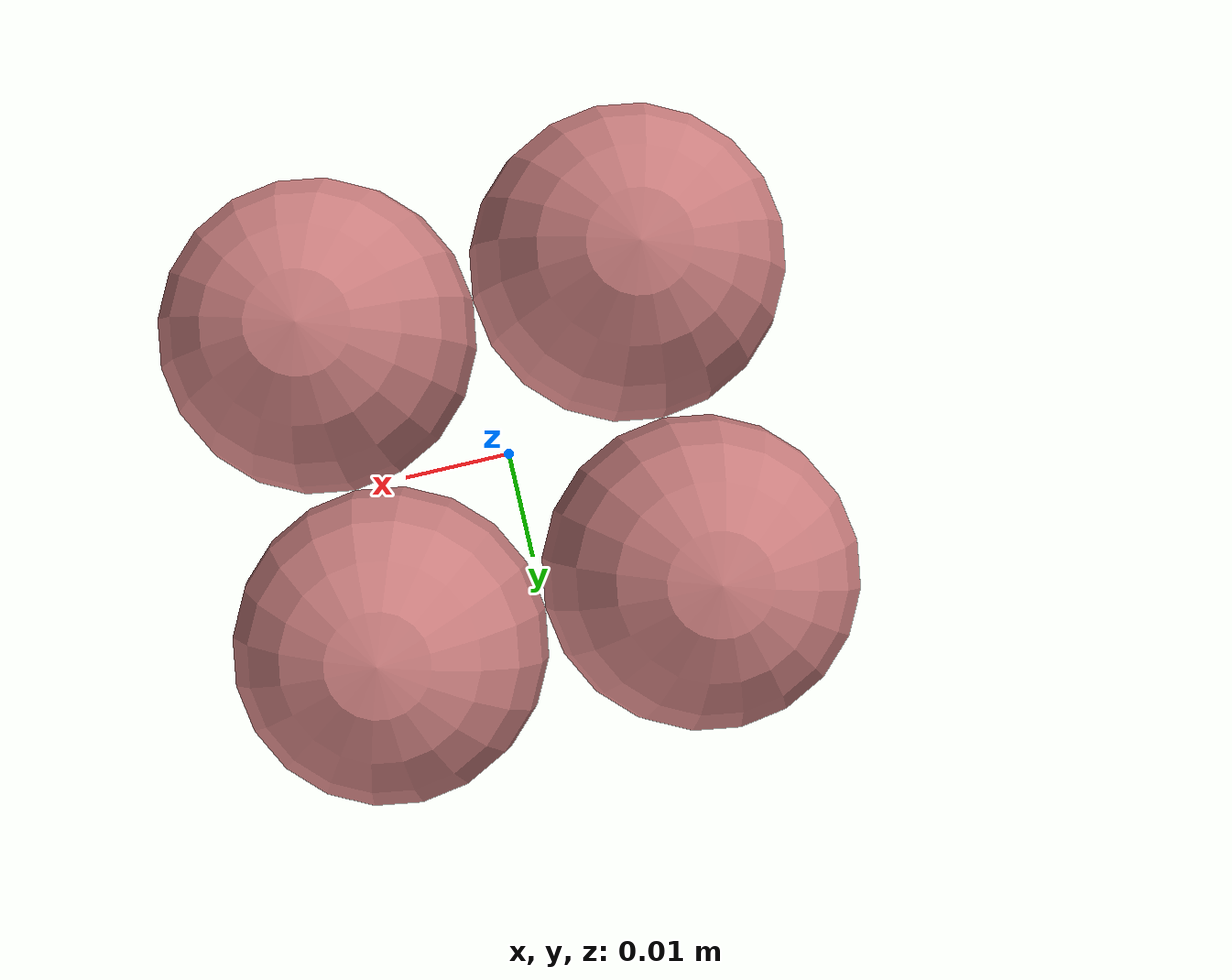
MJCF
<mujoco model="adhesive gripper">

  <default class="active_adhesion">
      <geom rgba=".8 .5 .5 1" margin=".01" gap=".01"/>
  </default>

  <worldbody>
    <body name="4boxes" pos="0 0 0" quat="0. 0. 1. 0." childclass="active_adhesion">
       <site name="force_sensor" group="3"/>
       <geom size=".015 .015 .01" pos="0.015 0.015 0"/>
       <geom size=".015 .015 .01" pos="0.015 -.015 0"/>
       <geom size=".015 .015 .01" pos="-.015 0.015 0"/>
       <geom size=".015 .015 .01" pos="-.015 -.015 0"/>
     </body>
  </worldbody>

  <actuator>
      <adhesion name="adhere_arm" body="4boxes" ctrlrange="0 1" gain="10000"/>
  </actuator>

  <sensor>
    <force site="force_sensor"/>
  </sensor>

</mujoco>
